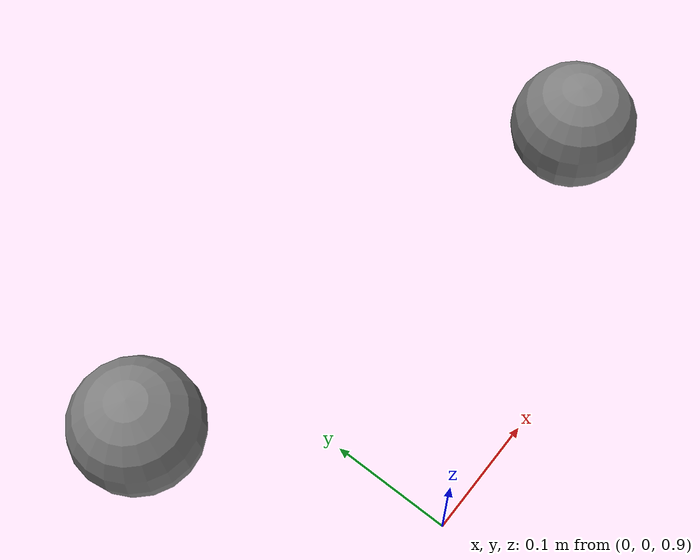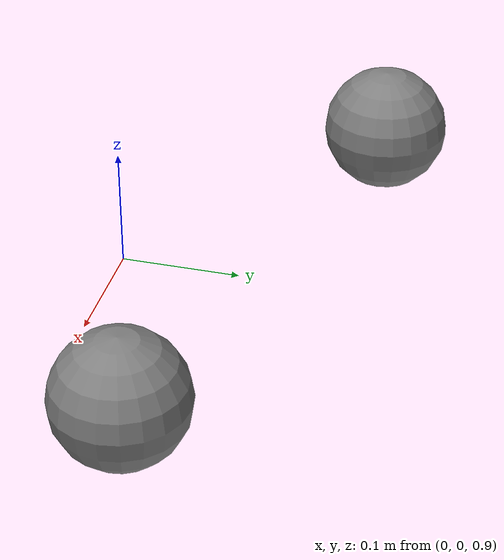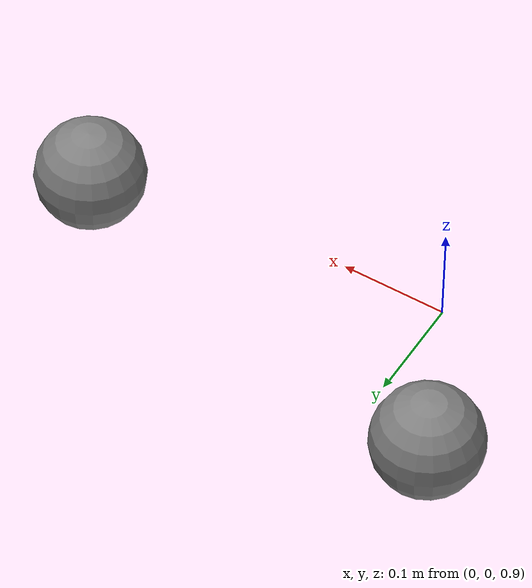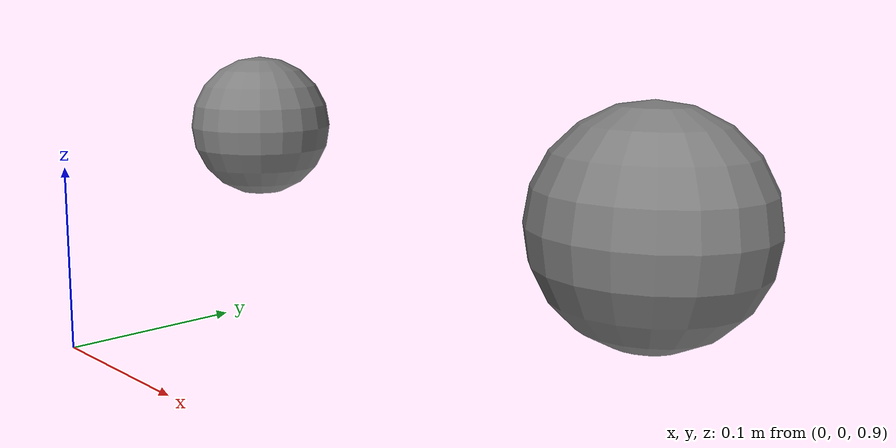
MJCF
<mujoco model="t07">
            <worldbody>
                <body name="b1" pos="0 0 1">
                    <joint type="free"/>
                    <geom type="sphere" size="0.05" pos="0.3 0.1 0" mass="1"/>
                    <geom type="sphere" size="0.05" pos="-0.1 0.2 0" mass="0.5"/>
                </body>
            </worldbody>
            <sensor>
                <framequat name="fq_body" objtype="body" objname="b1"/>
                <framequat name="fq_xbody" objtype="xbody" objname="b1"/>
            </sensor>
        </mujoco>
